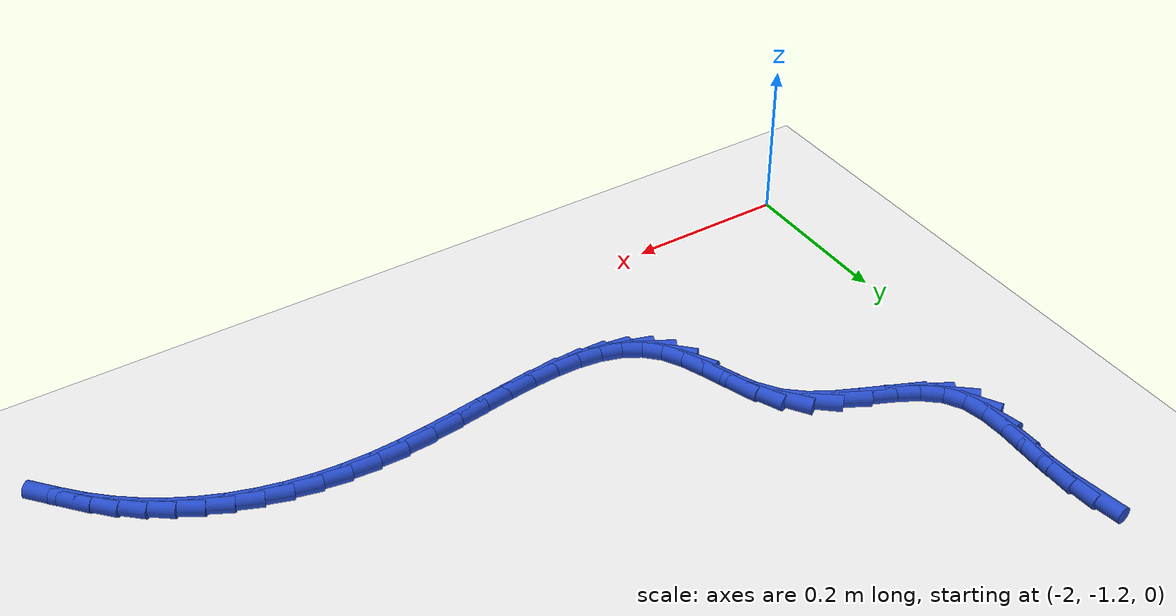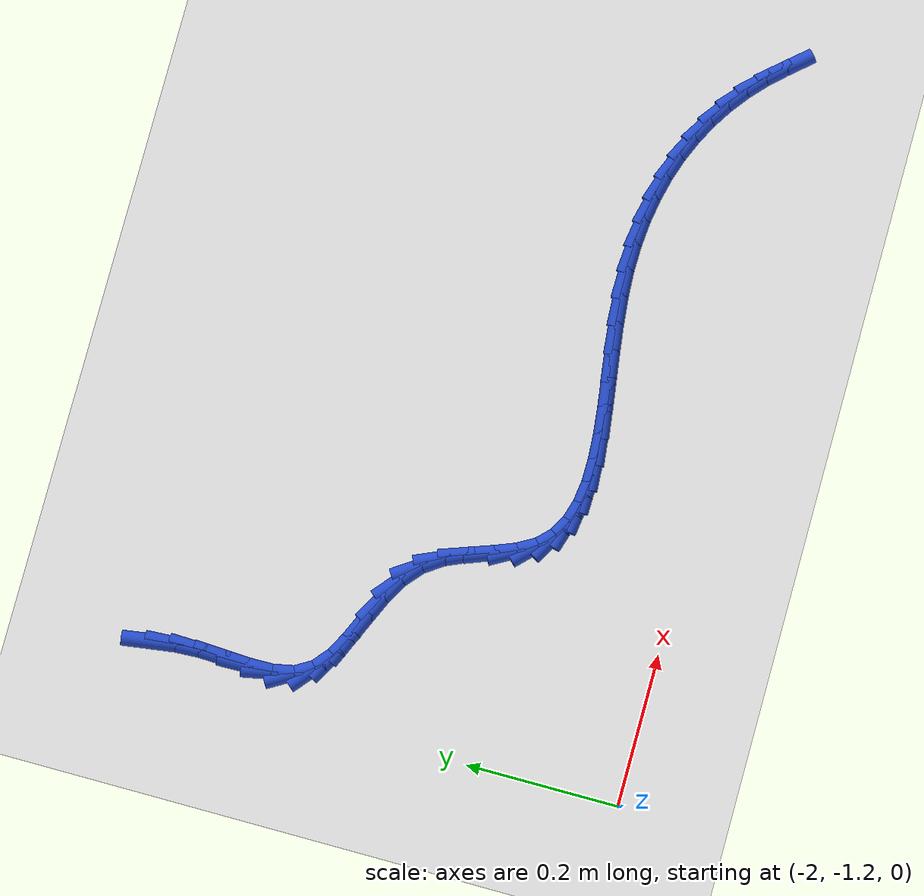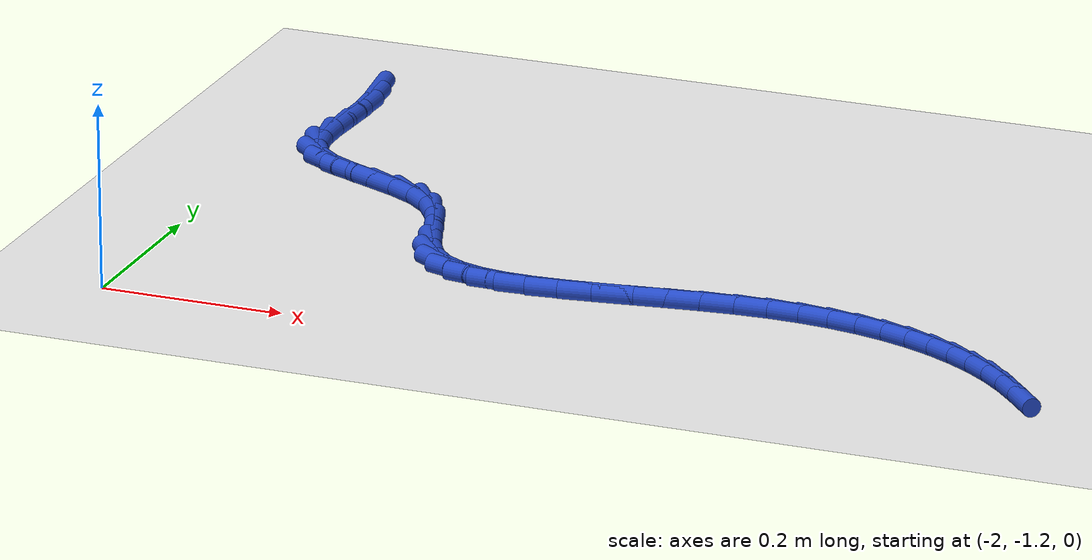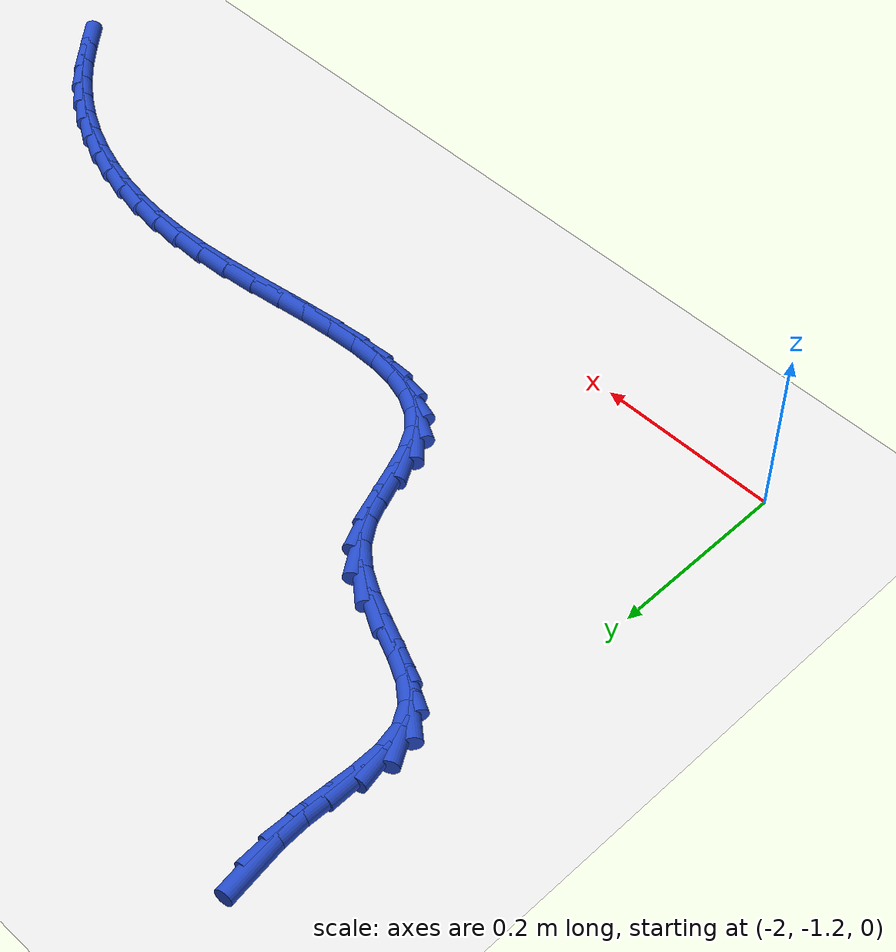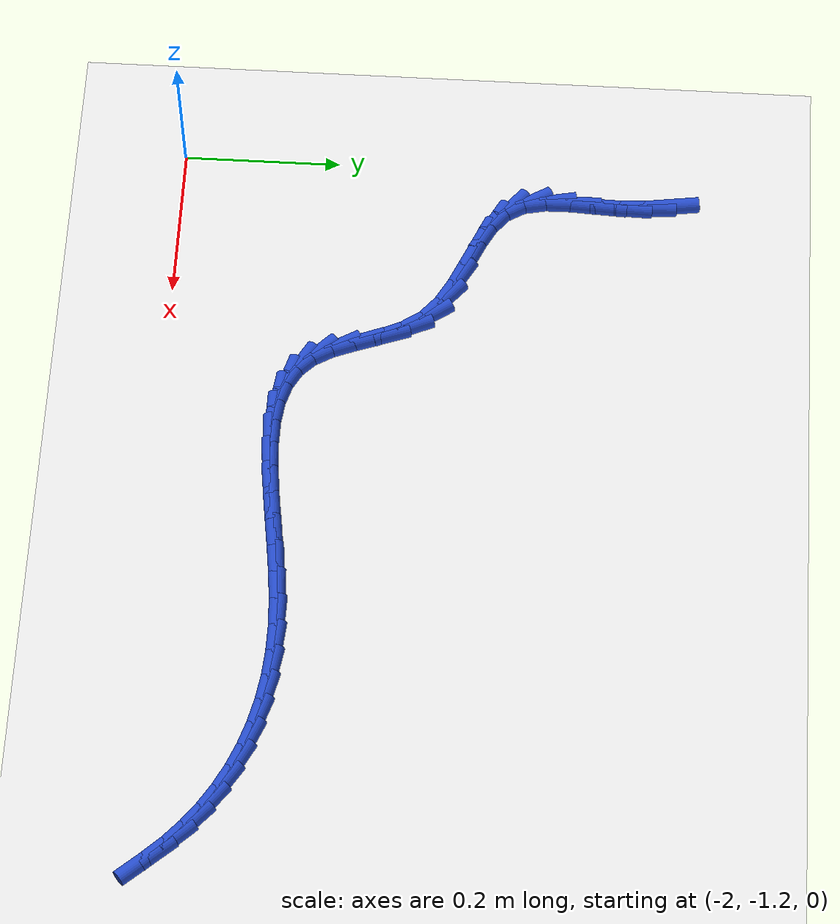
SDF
<sdf version="1.6">
 <world name="default">
  <model name="ground_plane">
   <static>1</static>
   <link name="link">
    <collision name="collision">
     <geometry><plane><normal>0 0 1</normal><size>100 100</size></plane></geometry>
     <surface><friction><ode><mu>100</mu><mu2>50</mu2></ode></friction></surface>
    </collision>
    <visual name="visual">
     <cast_shadows>0</cast_shadows>
     <geometry><plane><normal>0 0 1</normal><size>100 100</size></plane></geometry>
     <material>
      <script><uri>file://media/materials/scripts/gazebo.material</uri><name>Gazebo/WhiteGlow</name></script>
     </material>
    </visual>
   </link>
  </model>
  <model name="line">
   <link name="link_148">
    <pose>-1.953987337212004 -0.572741085740993 0.01 0 1.57 -1.4321456812445237</pose>
    <collision name="collision">
     <geometry><cylinder><radius>0.01</radius><length>0.08</length></cylinder></geometry>
    </collision>
    <visual name="visual">
     <material>
      <script><name>Gazebo/Blue</name><uri>file://media/materials/scripts/gazebo.material</uri></script>
     </material>
     <geometry><cylinder><radius>0.01</radius><length>0.08</length></cylinder></geometry>
    </visual>
   </link>
   <link name="link_149">
    <pose>-1.9498998928936633 -0.6020321022182642 0.01 0 1.57 -1.5199099182026408</pose>
    <collision name="collision">
     <geometry><cylinder><radius>0.01</radius><length>0.08</length></cylinder></geometry>
    </collision>
    <visual name="visual">
     <material>
      <script><name>Gazebo/Blue</name><uri>file://media/materials/scripts/gazebo.material</uri></script>
     </material>
     <geometry><cylinder><radius>0.01</radius><length>0.08</length></cylinder></geometry>
    </visual>
   </link>
   <link name="link_150">
    <pose>-1.9483332348380271 -0.6327928813098775 0.01 0 1.57 1.5404237913107144</pose>
    <collision name="collision">
     <geometry><cylinder><radius>0.01</radius><length>0.08</length></cylinder></geometry>
    </collision>
    <visual name="visual">
     <material>
      <script><name>Gazebo/Blue</name><uri>file://media/materials/scripts/gazebo.material</uri></script>
     </material>
     <geometry><cylinder><radius>0.01</radius><length>0.08</length></cylinder></geometry>
    </visual>
   </link>
   <link name="link_151">
    <pose>-1.9493194710786956 -0.6652542132876924 0.01 0 1.57 1.5181675362472684</pose>
    <collision name="collision">
     <geometry><cylinder><radius>0.01</radius><length>0.08</length></cylinder></geometry>
    </collision>
    <visual name="visual">
     <material>
      <script><name>Gazebo/Blue</name><uri>file://media/materials/scripts/gazebo.material</uri></script>
     </material>
     <geometry><cylinder><radius>0.01</radius><length>0.08</length></cylinder></geometry>
    </visual>
   </link>
   <link name="link_152">
    <pose>-1.9510599103849549 -0.6982937741024504 0.01 0 1.57 -1.5568017344184037</pose>
    <collision name="collision">
     <geometry><cylinder><radius>0.01</radius><length>0.08</length></cylinder></geometry>
    </collision>
    <visual name="visual">
     <material>
      <script><name>Gazebo/Blue</name><uri>file://media/materials/scripts/gazebo.material</uri></script>
     </material>
     <geometry><cylinder><radius>0.01</radius><length>0.08</length></cylinder></geometry>
    </visual>
   </link>
   <link name="link_153">
    <pose>-1.9506169011389194 -0.729947452382217 0.01 0 1.57 -1.3760162796097855</pose>
    <collision name="collision">
     <geometry><cylinder><radius>0.01</radius><length>0.08</length></cylinder></geometry>
    </collision>
    <visual name="visual">
     <material>
      <script><name>Gazebo/Blue</name><uri>file://media/materials/scripts/gazebo.material</uri></script>
     </material>
     <geometry><cylinder><radius>0.01</radius><length>0.08</length></cylinder></geometry>
    </visual>
   </link>
   <link name="link_154">
    <pose>-1.9450356180299124 -0.7582384439546419 0.01 0 1.57 -1.0405125017303885</pose>
    <collision name="collision">
     <geometry><cylinder><radius>0.01</radius><length>0.08</length></cylinder></geometry>
    </collision>
    <visual name="visual">
     <material>
      <script><name>Gazebo/Blue</name><uri>file://media/materials/scripts/gazebo.material</uri></script>
     </material>
     <geometry><cylinder><radius>0.01</radius><length>0.08</length></cylinder></geometry>
    </visual>
   </link>
   <link name="link_155">
    <pose>-1.93151540302892 -0.7812987429996383 0.01 0 1.57 -0.6962427689708951</pose>
    <collision name="collision">
     <geometry><cylinder><radius>0.01</radius><length>0.08</length></cylinder></geometry>
    </collision>
    <visual name="visual">
     <material>
      <script><name>Gazebo/Blue</name><uri>file://media/materials/scripts/gazebo.material</uri></script>
     </material>
     <geometry><cylinder><radius>0.01</radius><length>0.08</length></cylinder></geometry>
    </visual>
   </link>
   <link name="link_156">
    <pose>-1.9100558189109178 -0.7992365049562515 0.01 0 1.57 -0.49762213860098264</pose>
    <collision name="collision">
     <geometry><cylinder><radius>0.01</radius><length>0.08</length></cylinder></geometry>
    </collision>
    <visual name="visual">
     <material>
      <script><name>Gazebo/Blue</name><uri>file://media/materials/scripts/gazebo.material</uri></script>
     </material>
     <geometry><cylinder><radius>0.01</radius><length>0.08</length></cylinder></geometry>
    </visual>
   </link>
   <link name="link_157">
    <pose>-1.883096047531766 -0.8138815640353635 0.01 0 1.57 -0.416367886856562</pose>
    <collision name="collision">
     <geometry><cylinder><radius>0.01</radius><length>0.08</length></cylinder></geometry>
    </collision>
    <visual name="visual">
     <material>
      <script><name>Gazebo/Blue</name><uri>file://media/materials/scripts/gazebo.material</uri></script>
     </material>
     <geometry><cylinder><radius>0.01</radius><length>0.08</length></cylinder></geometry>
    </visual>
   </link>
   <link name="link_158">
    <pose>-1.853156887757963 -0.8271213528966219 0.01 0 1.57 -0.4240286871626258</pose>
    <collision name="collision">
     <geometry><cylinder><radius>0.01</radius><length>0.08</length></cylinder></geometry>
    </collision>
    <visual name="visual">
     <material>
      <script><name>Gazebo/Blue</name><uri>file://media/materials/scripts/gazebo.material</uri></script>
     </material>
     <geometry><cylinder><radius>0.01</radius><length>0.08</length></cylinder></geometry>
    </visual>
   </link>
   <link name="link_159">
    <pose>-1.8227591384560096 -0.8408433041996743 0.01 0 1.57 -0.5164765542693968</pose>
    <collision name="collision">
     <geometry><cylinder><radius>0.01</radius><length>0.08</length></cylinder></geometry>
    </collision>
    <visual name="visual">
     <material>
      <script><name>Gazebo/Blue</name><uri>file://media/materials/scripts/gazebo.material</uri></script>
     </material>
     <geometry><cylinder><radius>0.01</radius><length>0.08</length></cylinder></geometry>
    </visual>
   </link>
   <link name="link_160">
    <pose>-1.7944235984924048 -0.8569348506041685 0.01 0 1.57 -0.7083655854544844</pose>
    <collision name="collision">
     <geometry><cylinder><radius>0.01</radius><length>0.08</length></cylinder></geometry>
    </collision>
    <visual name="visual">
     <material>
      <script><name>Gazebo/Blue</name><uri>file://media/materials/scripts/gazebo.material</uri></script>
     </material>
     <geometry><cylinder><radius>0.01</radius><length>0.08</length></cylinder></geometry>
    </visual>
   </link>
   <link name="link_161">
    <pose>-1.7706710667336272 -0.8772834247697336 0.01 0 1.57 -0.974188724331819</pose>
    <collision name="collision">
     <geometry><cylinder><radius>0.01</radius><length>0.08</length></cylinder></geometry>
    </collision>
    <visual name="visual">
     <material>
      <script><name>Gazebo/Blue</name><uri>file://media/materials/scripts/gazebo.material</uri></script>
     </material>
     <geometry><cylinder><radius>0.01</radius><length>0.08</length></cylinder></geometry>
    </visual>
   </link>
   <link name="link_162">
    <pose>-1.7531912643093022 -0.9030205015365599 0.01 0 1.57 -1.157004565028026</pose>
    <collision name="collision">
     <geometry><cylinder><radius>0.01</radius><length>0.08</length></cylinder></geometry>
    </collision>
    <visual name="visual">
     <material>
      <script><name>Gazebo/Blue</name><uri>file://media/materials/scripts/gazebo.material</uri></script>
     </material>
     <geometry><cylinder><radius>0.01</radius><length>0.08</length></cylinder></geometry>
    </visual>
   </link>
   <link name="link_163">
    <pose>-1.740352451975879 -0.9322563173820283 0.01 0 1.57 -1.2303466583494433</pose>
    <collision name="collision">
     <geometry><cylinder><radius>0.01</radius><length>0.08</length></cylinder></geometry>
    </collision>
    <visual name="visual">
     <material>
      <script><name>Gazebo/Blue</name><uri>file://media/materials/scripts/gazebo.material</uri></script>
     </material>
     <geometry><cylinder><radius>0.01</radius><length>0.08</length></cylinder></geometry>
    </visual>
   </link>
   <link name="link_164">
    <pose>-1.729693237429093 -0.9623464468658005 0.01 0 1.57 -1.2018879460210414</pose>
    <collision name="collision">
     <geometry><cylinder><radius>0.01</radius><length>0.08</length></cylinder></geometry>
    </collision>
    <visual name="visual">
     <material>
      <script><name>Gazebo/Blue</name><uri>file://media/materials/scripts/gazebo.material</uri></script>
     </material>
     <geometry><cylinder><radius>0.01</radius><length>0.08</length></cylinder></geometry>
    </visual>
   </link>
   <link name="link_165">
    <pose>-1.7187522283646817 -0.9906464645475397 0.01 0 1.57 -1.0506477274023416</pose>
    <collision name="collision">
     <geometry><cylinder><radius>0.01</radius><length>0.08</length></cylinder></geometry>
    </collision>
    <visual name="visual">
     <material>
      <script><name>Gazebo/Blue</name><uri>file://media/materials/scripts/gazebo.material</uri></script>
     </material>
     <geometry><cylinder><radius>0.01</radius><length>0.08</length></cylinder></geometry>
    </visual>
   </link>
   <link name="link_166">
    <pose>-1.7050770831508073 -1.0145223728472665 0.01 0 1.57 -0.7855350502119296</pose>
    <collision name="collision">
     <geometry><cylinder><radius>0.01</radius><length>0.08</length></cylinder></geometry>
    </collision>
    <visual name="visual">
     <material>
      <script><name>Gazebo/Blue</name><uri>file://media/materials/scripts/gazebo.material</uri></script>
     </material>
     <geometry><cylinder><radius>0.01</radius><length>0.08</length></cylinder></geometry>
    </visual>
   </link>
   <link name="link_167">
    <pose>-1.6871673975450203 -1.0324369623239813 0.01 0 1.57 -0.5179947706640051</pose>
    <collision name="collision">
     <geometry><cylinder><radius>0.01</radius><length>0.08</length></cylinder></geometry>
    </collision>
    <visual name="visual">
     <material>
      <script><name>Gazebo/Blue</name><uri>file://media/materials/scripts/gazebo.material</uri></script>
     </material>
     <geometry><cylinder><radius>0.01</radius><length>0.08</length></cylinder></geometry>
    </visual>
   </link>
   <link name="link_168">
    <pose>-1.6652991607466794 -1.0448997203876051 0.01 0 1.57 -0.29642028281391813</pose>
    <collision name="collision">
     <geometry><cylinder><radius>0.01</radius><length>0.08</length></cylinder></geometry>
    </collision>
    <visual name="visual">
     <material>
      <script><name>Gazebo/Blue</name><uri>file://media/materials/scripts/gazebo.material</uri></script>
     </material>
     <geometry><cylinder><radius>0.01</radius><length>0.08</length></cylinder></geometry>
    </visual>
   </link>
   <link name="link_169">
    <pose>-1.639942702828849 -1.0526440470368237 0.01 0 1.57 -0.13172206730696548</pose>
    <collision name="collision">
     <geometry><cylinder><radius>0.01</radius><length>0.08</length></cylinder></geometry>
    </collision>
    <visual name="visual">
     <material>
      <script><name>Gazebo/Blue</name><uri>file://media/materials/scripts/gazebo.material</uri></script>
     </material>
     <geometry><cylinder><radius>0.01</radius><length>0.08</length></cylinder></geometry>
    </visual>
   </link>
   <link name="link_170">
    <pose>-1.611568353864593 -1.0564033422703223 0.01 0 1.57 -0.01641613384560857</pose>
    <collision name="collision">
     <geometry><cylinder><radius>0.01</radius><length>0.08</length></cylinder></geometry>
    </collision>
    <visual name="visual">
     <material>
      <script><name>Gazebo/Blue</name><uri>file://media/materials/scripts/gazebo.material</uri></script>
     </material>
     <geometry><cylinder><radius>0.01</radius><length>0.08</length></cylinder></geometry>
    </visual>
   </link>
   <link name="link_171">
    <pose>-1.5806464439269772 -1.056911006086787 0.01 0 1.57 0.06085265243388237</pose>
    <collision name="collision">
     <geometry><cylinder><radius>0.01</radius><length>0.08</length></cylinder></geometry>
    </collision>
    <visual name="visual">
     <material>
      <script><name>Gazebo/Blue</name><uri>file://media/materials/scripts/gazebo.material</uri></script>
     </material>
     <geometry><cylinder><radius>0.01</radius><length>0.08</length></cylinder></geometry>
    </visual>
   </link>
   <link name="link_172">
    <pose>-1.5476473030890647 -1.054900438484903 0.01 0 1.57 0.10923786989232835</pose>
    <collision name="collision">
     <geometry><cylinder><radius>0.01</radius><length>0.08</length></cylinder></geometry>
    </collision>
    <visual name="visual">
     <material>
      <script><name>Gazebo/Blue</name><uri>file://media/materials/scripts/gazebo.material</uri></script>
     </material>
     <geometry><cylinder><radius>0.01</radius><length>0.08</length></cylinder></geometry>
    </visual>
   </link>
   <link name="link_173">
    <pose>-1.513041261423921 -1.0511050394633563 0.01 0 1.57 0.13478157357715362</pose>
    <collision name="collision">
     <geometry><cylinder><radius>0.01</radius><length>0.08</length></cylinder></geometry>
    </collision>
    <visual name="visual">
     <material>
      <script><name>Gazebo/Blue</name><uri>file://media/materials/scripts/gazebo.material</uri></script>
     </material>
     <geometry><cylinder><radius>0.01</radius><length>0.08</length></cylinder></geometry>
    </visual>
   </link>
   <link name="link_174">
    <pose>-1.4772986490046098 -1.046258209020832 0.01 0 1.57 0.14091707895460365</pose>
    <collision name="collision">
     <geometry><cylinder><radius>0.01</radius><length>0.08</length></cylinder></geometry>
    </collision>
    <visual name="visual">
     <material>
      <script><name>Gazebo/Blue</name><uri>file://media/materials/scripts/gazebo.material</uri></script>
     </material>
     <geometry><cylinder><radius>0.01</radius><length>0.08</length></cylinder></geometry>
    </visual>
   </link>
   <link name="link_175">
    <pose>-1.440889795904196 -1.041093347156016 0.01 0 1.57 0.12902982794290627</pose>
    <collision name="collision">
     <geometry><cylinder><radius>0.01</radius><length>0.08</length></cylinder></geometry>
    </collision>
    <visual name="visual">
     <material>
      <script><name>Gazebo/Blue</name><uri>file://media/materials/scripts/gazebo.material</uri></script>
     </material>
     <geometry><cylinder><radius>0.01</radius><length>0.08</length></cylinder></geometry>
    </visual>
   </link>
   <link name="link_176">
    <pose>-1.404285032195745 -1.036343853867594 0.01 0 1.57 0.09878804917451497</pose>
    <collision name="collision">
     <geometry><cylinder><radius>0.01</radius><length>0.08</length></cylinder></geometry>
    </collision>
    <visual name="visual">
     <material>
      <script><name>Gazebo/Blue</name><uri>file://media/materials/scripts/gazebo.material</uri></script>
     </material>
     <geometry><cylinder><radius>0.01</radius><length>0.08</length></cylinder></geometry>
    </visual>
   </link>
   <link name="link_177">
    <pose>-1.3679546879523194 -1.0327431291542513 0.01 0 1.57 0.04834860924223056</pose>
    <collision name="collision">
     <geometry><cylinder><radius>0.01</radius><length>0.08</length></cylinder></geometry>
    </collision>
    <visual name="visual">
     <material>
      <script><name>Gazebo/Blue</name><uri>file://media/materials/scripts/gazebo.material</uri></script>
     </material>
     <geometry><cylinder><radius>0.01</radius><length>0.08</length></cylinder></geometry>
    </visual>
   </link>
   <link name="link_178">
    <pose>-1.3323672714653023 -1.031021185119526 0.01 0 1.57 -0.017932039819245394</pose>
    <collision name="collision">
     <geometry><cylinder><radius>0.01</radius><length>0.08</length></cylinder></geometry>
    </collision>
    <visual name="visual">
     <material>
      <script><name>Gazebo/Blue</name><uri>file://media/materials/scripts/gazebo.material</uri></script>
     </material>
     <geometry><cylinder><radius>0.01</radius><length>0.08</length></cylinder></geometry>
    </visual>
   </link>
   <link name="link_179">
    <pose>-1.2978473029370332 -1.0316402649278555 0.01 0 1.57 -0.08861654019922072</pose>
    <collision name="collision">
     <geometry><cylinder><radius>0.01</radius><length>0.08</length></cylinder></geometry>
    </collision>
    <visual name="visual">
     <material>
      <script><name>Gazebo/Blue</name><uri>file://media/materials/scripts/gazebo.material</uri></script>
     </material>
     <geometry><cylinder><radius>0.01</radius><length>0.08</length></cylinder></geometry>
    </visual>
   </link>
   <link name="link_180">
    <pose>-1.2644734996849116 -1.0346055018662939 0.01 0 1.57 -0.1624160988685068</pose>
    <collision name="collision">
     <geometry><cylinder><radius>0.01</radius><length>0.08</length></cylinder></geometry>
    </collision>
    <visual name="visual">
     <material>
      <script><name>Gazebo/Blue</name><uri>file://media/materials/scripts/gazebo.material</uri></script>
     </material>
     <geometry><cylinder><radius>0.01</radius><length>0.08</length></cylinder></geometry>
    </visual>
   </link>
   <link name="link_181">
    <pose>-1.2323005502283126 -1.0398773438191098 0.01 0 1.57 -0.23917249173516686</pose>
    <collision name="collision">
     <geometry><cylinder><radius>0.01</radius><length>0.08</length></cylinder></geometry>
    </collision>
    <visual name="visual">
     <material>
      <script><name>Gazebo/Blue</name><uri>file://media/materials/scripts/gazebo.material</uri></script>
     </material>
     <geometry><cylinder><radius>0.01</radius><length>0.08</length></cylinder></geometry>
    </visual>
   </link>
   <link name="link_182">
    <pose>-1.2013831430866106 -1.0474162386705717 0.01 0 1.57 -0.31862655717526445</pose>
    <collision name="collision">
     <geometry><cylinder><radius>0.01</radius><length>0.08</length></cylinder></geometry>
    </collision>
    <visual name="visual">
     <material>
      <script><name>Gazebo/Blue</name><uri>file://media/materials/scripts/gazebo.material</uri></script>
     </material>
     <geometry><cylinder><radius>0.01</radius><length>0.08</length></cylinder></geometry>
    </visual>
   </link>
   <link name="link_183">
    <pose>-1.1717759667791796 -1.0571826343049475 0.01 0 1.57 -0.4004117426792637</pose>
    <collision name="collision">
     <geometry><cylinder><radius>0.01</radius><length>0.08</length></cylinder></geometry>
    </collision>
    <visual name="visual">
     <material>
      <script><name>Gazebo/Blue</name><uri>file://media/materials/scripts/gazebo.material</uri></script>
     </material>
     <geometry><cylinder><radius>0.01</radius><length>0.08</length></cylinder></geometry>
    </visual>
   </link>
   <link name="link_184">
    <pose>-1.143533709825395 -1.0691369786065057 0.01 0 1.57 -0.48405617952591956</pose>
    <collision name="collision">
     <geometry><cylinder><radius>0.01</radius><length>0.08</length></cylinder></geometry>
    </collision>
    <visual name="visual">
     <material>
      <script><name>Gazebo/Blue</name><uri>file://media/materials/scripts/gazebo.material</uri></script>
     </material>
     <geometry><cylinder><radius>0.01</radius><length>0.08</length></cylinder></geometry>
    </visual>
   </link>
   <link name="link_185">
    <pose>-1.1167110607446307 -1.0832397194595154 0.01 0 1.57 -0.5689951834460512</pose>
    <collision name="collision">
     <geometry><cylinder><radius>0.01</radius><length>0.08</length></cylinder></geometry>
    </collision>
    <visual name="visual">
     <material>
      <script><name>Gazebo/Blue</name><uri>file://media/materials/scripts/gazebo.material</uri></script>
     </material>
     <geometry><cylinder><radius>0.01</radius><length>0.08</length></cylinder></geometry>
    </visual>
   </link>
   <link name="link_186">
    <pose>-1.0913627080562613 -1.0994513047482444 0.01 0 1.57 -0.6545944849915449</pose>
    <collision name="collision">
     <geometry><cylinder><radius>0.01</radius><length>0.08</length></cylinder></geometry>
    </collision>
    <visual name="visual">
     <material>
      <script><name>Gazebo/Blue</name><uri>file://media/materials/scripts/gazebo.material</uri></script>
     </material>
     <geometry><cylinder><radius>0.01</radius><length>0.08</length></cylinder></geometry>
    </visual>
   </link>
   <link name="link_187">
    <pose>-1.0675433402796617 -1.1177321823569613 0.01 0 1.57 -0.7401823893841123</pose>
    <collision name="collision">
     <geometry><cylinder><radius>0.01</radius><length>0.08</length></cylinder></geometry>
    </collision>
    <visual name="visual">
     <material>
      <script><name>Gazebo/Blue</name><uri>file://media/materials/scripts/gazebo.material</uri></script>
     </material>
     <geometry><cylinder><radius>0.01</radius><length>0.08</length></cylinder></geometry>
    </visual>
   </link>
   <link name="link_188">
    <pose>-1.0453076459342054 -1.1380428001699345 0.01 0 1.57 -0.819038709090895</pose>
    <collision name="collision">
     <geometry><cylinder><radius>0.01</radius><length>0.08</length></cylinder></geometry>
    </collision>
    <visual name="visual">
     <material>
      <script><name>Gazebo/Blue</name><uri>file://media/materials/scripts/gazebo.material</uri></script>
     </material>
     <geometry><cylinder><radius>0.01</radius><length>0.08</length></cylinder></geometry>
    </visual>
   </link>
   <link name="link_189">
    <pose>-1.024578520816129 -1.160215718109108 0.01 0 1.57 -0.8574132528506331</pose>
    <collision name="collision">
     <geometry><cylinder><radius>0.01</radius><length>0.08</length></cylinder></geometry>
    </collision>
    <visual name="visual">
     <material>
      <script><name>Gazebo/Blue</name><uri>file://media/materials/scripts/gazebo.material</uri></script>
     </material>
     <geometry><cylinder><radius>0.01</radius><length>0.08</length></cylinder></geometry>
    </visual>
   </link>
  </model>
 </world>
</sdf>
